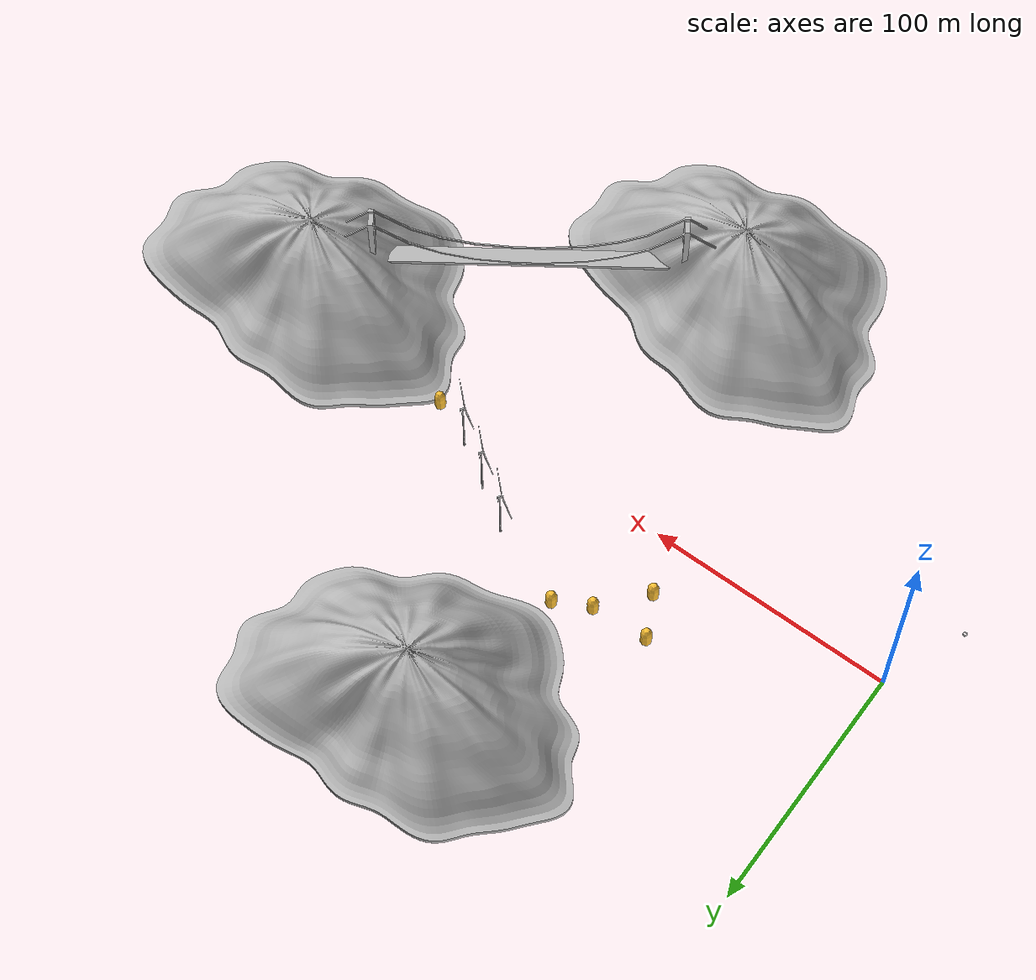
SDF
<sdf version="1.6">
 <world name="maritime_level_m_gps_assets_quick_complex">
  <scene>
   <ambient>0.45 0.48 0.52 1.0</ambient>
   <sky><clouds><speed>0</speed></clouds></sky>
   <shadows>true</shadows>
  </scene>
  <include><uri>model://sun</uri></include>
  <physics name="default_physics" default="0" type="ode">
   <gravity>0 0 -9.8066</gravity>
   <max_step_size>0.004</max_step_size>
   <real_time_factor>1.0</real_time_factor>
   <real_time_update_rate>250</real_time_update_rate>
  </physics>
  <model name="cruise_ship_hidden_support_deck">
   <static>true</static>
   <pose>30.5 16 4.54 0 0 0</pose>
   <link name="link">
    <collision name="collision"><geometry><box><size>64 12.5 0.24</size></box></geometry></collision>
   </link>
  </model>
  <model name="cruise_ship_bow_h_pad_zone">
   <static>true</static>
   <pose>55 16 4.685 0 0 0</pose>
   <link name="link">
    <collision name="collision"><geometry><box><size>4.8 3 0.12</size></box></geometry></collision>
   </link>
  </model>
  <model name="kauai_left_island_visual">
   <static>true</static>
   <pose>135 -105 -1.15 0 0 -0.18</pose>
   <link name="vessel_link">
    <visual name="vessel_visual">
     <geometry>
      <mesh>
       <uri>model://f250_clean_mountain_probe_visual/meshes/clean_single_mountain_probe_detailed.obj</uri>
       <scale>1 1 1</scale>
      </mesh>
     </geometry>
    </visual>
    <collision name="kauai_left_island_visual_mesh_collision">
     <geometry>
      <mesh>
       <uri>model://f250_clean_mountain_probe_visual/meshes/clean_single_mountain_probe_detailed.obj</uri>
       <scale>1 1 1</scale>
      </mesh>
     </geometry>
    </collision>
   </link>
  </model>
  <model name="kauai_center_island_visual">
   <static>true</static>
   <pose>270 -12 -1.15 0 0 0.02</pose>
   <link name="vessel_link">
    <visual name="vessel_visual">
     <geometry>
      <mesh>
       <uri>model://f250_clean_mountain_probe_visual/meshes/clean_single_mountain_probe_detailed.obj</uri>
       <scale>1 1 1</scale>
      </mesh>
     </geometry>
    </visual>
    <collision name="kauai_center_island_visual_mesh_collision">
     <geometry>
      <mesh>
       <uri>model://f250_clean_mountain_probe_visual/meshes/clean_single_mountain_probe_detailed.obj</uri>
       <scale>1 1 1</scale>
      </mesh>
     </geometry>
    </collision>
   </link>
  </model>
  <model name="kauai_right_island_visual">
   <static>true</static>
   <pose>135 105 -1.15 0 0 0.18</pose>
   <link name="vessel_link">
    <visual name="vessel_visual">
     <geometry>
      <mesh>
       <uri>model://f250_clean_mountain_probe_visual/meshes/clean_single_mountain_probe_detailed.obj</uri>
       <scale>1 1 1</scale>
      </mesh>
     </geometry>
    </visual>
    <collision name="kauai_right_island_visual_mesh_collision">
     <geometry>
      <mesh>
       <uri>model://f250_clean_mountain_probe_visual/meshes/clean_single_mountain_probe_detailed.obj</uri>
       <scale>1 1 1</scale>
      </mesh>
     </geometry>
    </collision>
   </link>
  </model>
  <model name="golden_gate_bridge_visual">
   <static>true</static>
   <pose>202.5 -58.5 0 0 0 0.60323</pose>
   <link name="vessel_link">
    <visual name="vessel_visual">
     <geometry>
      <mesh>
       <uri>model://f250_golden_gate_bridge_matthew_zirkle_visual/meshes/golden_gate_bridge_matthew_zirkle_materialized.obj</uri>
       <scale>5.85 5.85 5.85</scale>
      </mesh>
     </geometry>
    </visual>
    <collision name="golden_gate_bridge_visual_mesh_collision">
     <geometry>
      <mesh>
       <uri>model://f250_golden_gate_bridge_matthew_zirkle_visual/meshes/golden_gate_bridge_matthew_zirkle_materialized.obj</uri>
       <scale>5.85 5.85 5.85</scale>
      </mesh>
     </geometry>
    </collision>
   </link>
  </model>
  <model name="lifebuoy_low_poly_visual">
   <static>true</static>
   <pose>-14 -33.5 0.08 0 0 0.25</pose>
   <link name="vessel_link">
    <visual name="vessel_visual">
     <geometry>
      <mesh>
       <uri>model://f250_lifebuoy_low_poly_visual/meshes/lifebuoy_low_poly_materialized.obj</uri>
       <scale>1.1 1.1 1.1</scale>
      </mesh>
     </geometry>
    </visual>
    <collision name="lifebuoy_low_poly_visual_mesh_collision">
     <geometry>
      <mesh>
       <uri>model://f250_lifebuoy_low_poly_visual/meshes/lifebuoy_low_poly_materialized.obj</uri>
       <scale>1.1 1.1 1.1</scale>
      </mesh>
     </geometry>
    </collision>
   </link>
  </model>
  <model name="task_wind_channel_1">
   <static>true</static>
   <pose>145.816 34.791 0 0 0 -0.570212</pose>
   <link name="vessel_link">
    <visual name="vessel_visual">
     <geometry>
      <mesh>
       <uri>model://f250_generic_wind_turbine_visual/meshes/generic_wind_turbine_materialized.obj</uri>
       <scale>1.85 1.85 1.85</scale>
      </mesh>
     </geometry>
    </visual>
    <collision name="task_wind_channel_1_mesh_collision">
     <geometry>
      <mesh>
       <uri>model://f250_generic_wind_turbine_visual/meshes/generic_wind_turbine_materialized.obj</uri>
       <scale>1.85 1.85 1.85</scale>
      </mesh>
     </geometry>
    </collision>
   </link>
  </model>
  <model name="task_wind_channel_2">
   <static>true</static>
   <pose>161.987 24.421 0 0 0 -0.570212</pose>
   <link name="vessel_link">
    <visual name="vessel_visual">
     <geometry>
      <mesh>
       <uri>model://f250_generic_wind_turbine_visual/meshes/generic_wind_turbine_materialized.obj</uri>
       <scale>1.85 1.85 1.85</scale>
      </mesh>
     </geometry>
    </visual>
    <collision name="task_wind_channel_2_mesh_collision">
     <geometry>
      <mesh>
       <uri>model://f250_generic_wind_turbine_visual/meshes/generic_wind_turbine_materialized.obj</uri>
       <scale>1.85 1.85 1.85</scale>
      </mesh>
     </geometry>
    </collision>
   </link>
  </model>
  <model name="task_wind_channel_3">
   <static>true</static>
   <pose>178.158 14.051 0 0 0 -0.570212</pose>
   <link name="vessel_link">
    <visual name="vessel_visual">
     <geometry>
      <mesh>
       <uri>model://f250_generic_wind_turbine_visual/meshes/generic_wind_turbine_materialized.obj</uri>
       <scale>1.85 1.85 1.85</scale>
      </mesh>
     </geometry>
    </visual>
    <collision name="task_wind_channel_3_mesh_collision">
     <geometry>
      <mesh>
       <uri>model://f250_generic_wind_turbine_visual/meshes/generic_wind_turbine_materialized.obj</uri>
       <scale>1.85 1.85 1.85</scale>
      </mesh>
     </geometry>
    </collision>
   </link>
  </model>
  <model name="o1_left_of_reference">
   <static>true</static>
   <pose>78.564 38.061 5.5 0 0 0</pose>
   <link name="vessel_link">
    <visual name="vessel_visual">
     <geometry>
      <mesh>
       <uri>model://f250_navigation_buoy_collision_mesh/meshes/navigation_buoy_collision.obj</uri>
       <scale>3.1 3.1 11</scale>
      </mesh>
     </geometry>
     <material><ambient>1 0.76 0.2 1</ambient><diffuse>1 0.76 0.2 1</diffuse></material>
    </visual>
    <collision name="o1_left_of_reference_mesh_collision">
     <geometry>
      <mesh>
       <uri>model://f250_navigation_buoy_collision_mesh/meshes/navigation_buoy_collision.obj</uri>
       <scale>3.1 3.1 11</scale>
      </mesh>
     </geometry>
    </collision>
   </link>
  </model>
  <model name="o2_right_of_reference">
   <static>true</static>
   <pose>86.715 22.012 5.5 0 0 0</pose>
   <link name="vessel_link">
    <visual name="vessel_visual">
     <geometry>
      <mesh>
       <uri>model://f250_navigation_buoy_collision_mesh/meshes/navigation_buoy_collision.obj</uri>
       <scale>3.1 3.1 11</scale>
      </mesh>
     </geometry>
     <material><ambient>1 0.76 0.2 1</ambient><diffuse>1 0.76 0.2 1</diffuse></material>
    </visual>
    <collision name="o2_right_of_reference_mesh_collision">
     <geometry>
      <mesh>
       <uri>model://f250_navigation_buoy_collision_mesh/meshes/navigation_buoy_collision.obj</uri>
       <scale>3.1 3.1 11</scale>
      </mesh>
     </geometry>
    </collision>
   </link>
  </model>
  <model name="o3_on_reference">
   <static>true</static>
   <pose>101.363 39.546 5.5 0 0 0</pose>
   <link name="vessel_link">
    <visual name="vessel_visual">
     <geometry>
      <mesh>
       <uri>model://f250_navigation_buoy_collision_mesh/meshes/navigation_buoy_collision.obj</uri>
       <scale>3.1 3.1 11</scale>
      </mesh>
     </geometry>
     <material><ambient>1 0.76 0.2 1</ambient><diffuse>1 0.76 0.2 1</diffuse></material>
    </visual>
    <collision name="o3_on_reference_mesh_collision">
     <geometry>
      <mesh>
       <uri>model://f250_navigation_buoy_collision_mesh/meshes/navigation_buoy_collision.obj</uri>
       <scale>3.1 3.1 11</scale>
      </mesh>
     </geometry>
    </collision>
   </link>
  </model>
  <model name="o4_on_reference">
   <static>true</static>
   <pose>115.183 46.565 5.5 0 0 0</pose>
   <link name="vessel_link">
    <visual name="vessel_visual">
     <geometry>
      <mesh>
       <uri>model://f250_navigation_buoy_collision_mesh/meshes/navigation_buoy_collision.obj</uri>
       <scale>3.1 3.1 11</scale>
      </mesh>
     </geometry>
     <material><ambient>1 0.76 0.2 1</ambient><diffuse>1 0.76 0.2 1</diffuse></material>
    </visual>
    <collision name="o4_on_reference_mesh_collision">
     <geometry>
      <mesh>
       <uri>model://f250_navigation_buoy_collision_mesh/meshes/navigation_buoy_collision.obj</uri>
       <scale>3.1 3.1 11</scale>
      </mesh>
     </geometry>
    </collision>
   </link>
  </model>
  <model name="o5_near_island_bank">
   <static>true</static>
   <pose>197.5 5 5.5 0 0 0</pose>
   <link name="vessel_link">
    <visual name="vessel_visual">
     <geometry>
      <mesh>
       <uri>model://f250_navigation_buoy_collision_mesh/meshes/navigation_buoy_collision.obj</uri>
       <scale>3 3 11</scale>
      </mesh>
     </geometry>
     <material><ambient>1 0.76 0.2 1</ambient><diffuse>1 0.76 0.2 1</diffuse></material>
    </visual>
    <collision name="o5_near_island_bank_mesh_collision">
     <geometry>
      <mesh>
       <uri>model://f250_navigation_buoy_collision_mesh/meshes/navigation_buoy_collision.obj</uri>
       <scale>3 3 11</scale>
      </mesh>
     </geometry>
    </collision>
   </link>
  </model>
 </world>
</sdf>
